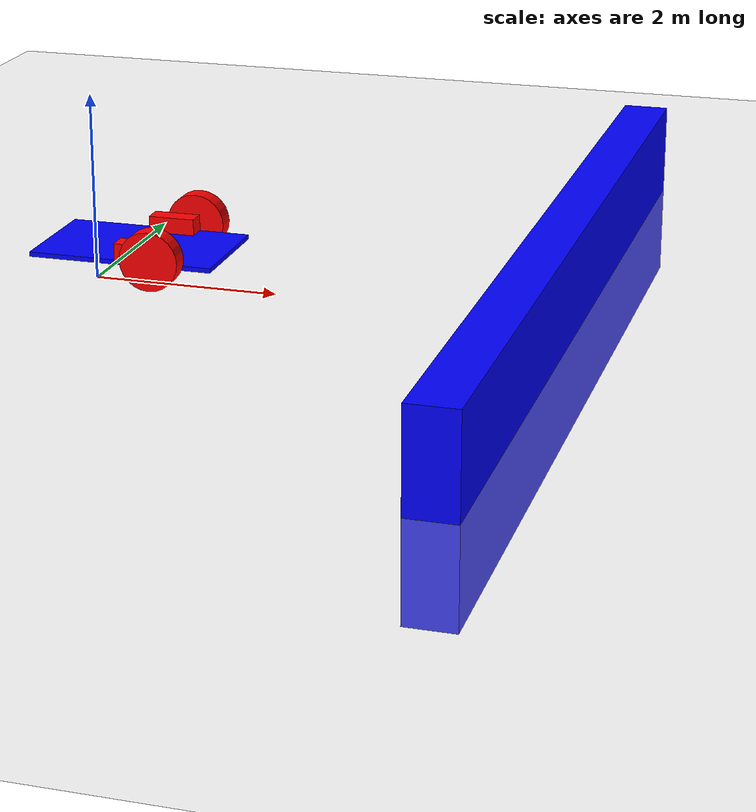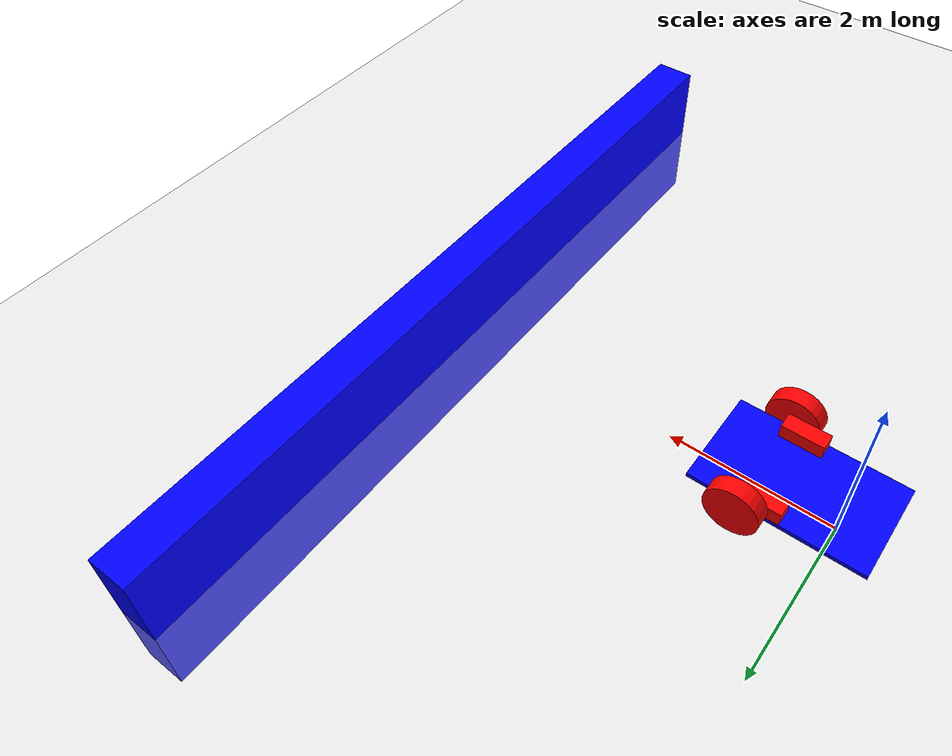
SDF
<sdf version='1.9'>
  <world name='sensor_world'>
    <physics name='1ms' type='ignored'>
      <max_step_size>0.001</max_step_size>
      <real_time_factor>1</real_time_factor>
      <real_time_update_rate>1000</real_time_update_rate>
    </physics>
    <plugin name='ignition::gazebo::systems::Physics' filename='ignition-gazebo-physics-system'/>
    <plugin name='ignition::gazebo::systems::UserCommands' filename='ignition-gazebo-user-commands-system'/>
    <plugin name='ignition::gazebo::systems::SceneBroadcaster' filename='ignition-gazebo-scene-broadcaster-system'/>
    <plugin name='ignition::gazebo::systems::Imu' filename='ignition-gazebo-imu-system'/>
    <plugin name='ignition::gazebo::systems::Sensors' filename='ignition-gazebo-sensors-system'>
      <render_engine>ogre2</render_engine>
    </plugin>
    <plugin name='ignition::gazebo::systems::Contact' filename='ignition-gazebo-contact-system'/>
    <gui fullscreen='false'>
      <plugin name='3D View' filename='MinimalScene'>
        <gz-gui>
          <title>3D View</title>
          <property type='bool' key='showTitleBar'>false</property>
          <property type='string' key='state'>docked</property>
        </gz-gui>
        <engine>ogre2</engine>
        <scene>scene</scene>
        <ambient_light>0.4 0.4 0.4</ambient_light>
        <background_color>0.8 0.8 0.8</background_color>
        <camera_pose>-6 0 6 0 0.5 0</camera_pose>
        <camera_clip>
          <near>0.25</near>
          <far>25000</far>
        </camera_clip>
      </plugin>
      <plugin name='Entity context menu' filename='EntityContextMenuPlugin'>
        <gz-gui>
          <property key='state' type='string'>floating</property>
          <property key='width' type='double'>5</property>
          <property key='height' type='double'>5</property>
          <property key='showTitleBar' type='bool'>false</property>
        </gz-gui>
      </plugin>
      <plugin name='Scene Manager' filename='GzSceneManager'>
        <gz-gui>
          <property key='resizable' type='bool'>false</property>
          <property key='width' type='double'>5</property>
          <property key='height' type='double'>5</property>
          <property key='state' type='string'>floating</property>
          <property key='showTitleBar' type='bool'>false</property>
        </gz-gui>
      </plugin>
      <plugin name='Interactive view control' filename='InteractiveViewControl'>
        <gz-gui>
          <property key='resizable' type='bool'>false</property>
          <property key='width' type='double'>5</property>
          <property key='height' type='double'>5</property>
          <property key='state' type='string'>floating</property>
          <property key='showTitleBar' type='bool'>false</property>
        </gz-gui>
      </plugin>
      <plugin name='Camera Tracking' filename='CameraTracking'>
        <gz-gui>
          <property key='resizable' type='bool'>false</property>
          <property key='width' type='double'>5</property>
          <property key='height' type='double'>5</property>
          <property key='state' type='string'>floating</property>
          <property key='showTitleBar' type='bool'>false</property>
        </gz-gui>
      </plugin>
      <plugin name='Marker manager' filename='MarkerManager'>
        <gz-gui>
          <property key='resizable' type='bool'>false</property>
          <property key='width' type='double'>5</property>
          <property key='height' type='double'>5</property>
          <property key='state' type='string'>floating</property>
          <property key='showTitleBar' type='bool'>false</property>
        </gz-gui>
      </plugin>
      <plugin name='Select Entities' filename='SelectEntities'>
        <gz-gui>
          <anchors target='Select entities'>
            <line own='right' target='right'/>
            <line own='top' target='top'/>
          </anchors>
          <property key='resizable' type='bool'>false</property>
          <property key='width' type='double'>5</property>
          <property key='height' type='double'>5</property>
          <property key='state' type='string'>floating</property>
          <property key='showTitleBar' type='bool'>false</property>
        </gz-gui>
      </plugin>
      <plugin name='Visualization Capabilities' filename='VisualizationCapabilities'>
        <gz-gui>
          <property key='resizable' type='bool'>false</property>
          <property key='width' type='double'>5</property>
          <property key='height' type='double'>5</property>
          <property key='state' type='string'>floating</property>
          <property key='showTitleBar' type='bool'>false</property>
        </gz-gui>
      </plugin>
      <plugin name='Spawn Entities' filename='Spawn'>
        <gz-gui>
          <anchors target='Select entities'>
            <line own='right' target='right'/>
            <line own='top' target='top'/>
          </anchors>
          <property key='resizable' type='bool'>false</property>
          <property key='width' type='double'>5</property>
          <property key='height' type='double'>5</property>
          <property key='state' type='string'>floating</property>
          <property key='showTitleBar' type='bool'>false</property>
        </gz-gui>
      </plugin>
      <plugin name='World control' filename='WorldControl'>
        <gz-gui>
          <title>World control</title>
          <property type='bool' key='showTitleBar'>false</property>
          <property type='bool' key='resizable'>false</property>
          <property type='double' key='height'>72</property>
          <property type='double' key='width'>121</property>
          <property type='double' key='z'>1</property>
          <property type='string' key='state'>floating</property>
          <anchors target='3D View'>
            <line own='left' target='left'/>
            <line own='bottom' target='bottom'/>
          </anchors>
        </gz-gui>
        <play_pause>true</play_pause>
        <step>true</step>
        <start_paused>true</start_paused>
        <use_event>true</use_event>
      </plugin>
      <plugin name='World stats' filename='WorldStats'>
        <gz-gui>
          <title>World stats</title>
          <property type='bool' key='showTitleBar'>false</property>
          <property type='bool' key='resizable'>false</property>
          <property type='double' key='height'>110</property>
          <property type='double' key='width'>290</property>
          <property type='double' key='z'>1</property>
          <property type='string' key='state'>floating</property>
          <anchors target='3D View'>
            <line own='right' target='right'/>
            <line own='bottom' target='bottom'/>
          </anchors>
        </gz-gui>
        <sim_time>true</sim_time>
        <real_time>true</real_time>
        <real_time_factor>true</real_time_factor>
        <iterations>true</iterations>
      </plugin>
      <plugin name='Shapes' filename='Shapes'>
        <gz-gui>
          <property key='resizable' type='bool'>false</property>
          <property key='x' type='double'>0</property>
          <property key='y' type='double'>0</property>
          <property key='width' type='double'>250</property>
          <property key='height' type='double'>50</property>
          <property key='state' type='string'>floating</property>
          <property key='showTitleBar' type='bool'>false</property>
          <property key='cardBackground' type='string'>#666666</property>
        </gz-gui>
      </plugin>
      <plugin name='Lights' filename='Lights'>
        <gz-gui>
          <property key='resizable' type='bool'>false</property>
          <property key='x' type='double'>250</property>
          <property key='y' type='double'>0</property>
          <property key='width' type='double'>150</property>
          <property key='height' type='double'>50</property>
          <property key='state' type='string'>floating</property>
          <property key='showTitleBar' type='bool'>false</property>
          <property key='cardBackground' type='string'>#666666</property>
        </gz-gui>
      </plugin>
      <plugin name='Transform control' filename='TransformControl'>
        <gz-gui>
          <property key='resizable' type='bool'>false</property>
          <property key='x' type='double'>0</property>
          <property key='y' type='double'>50</property>
          <property key='width' type='double'>250</property>
          <property key='height' type='double'>50</property>
          <property key='state' type='string'>floating</property>
          <property key='showTitleBar' type='bool'>false</property>
          <property key='cardBackground' type='string'>#777777</property>
        </gz-gui>
      </plugin>
      <plugin name='Screenshot' filename='Screenshot'>
        <gz-gui>
          <property key='resizable' type='bool'>false</property>
          <property key='x' type='double'>250</property>
          <property key='y' type='double'>50</property>
          <property key='width' type='double'>50</property>
          <property key='height' type='double'>50</property>
          <property key='state' type='string'>floating</property>
          <property key='showTitleBar' type='bool'>false</property>
          <property key='cardBackground' type='string'>#777777</property>
        </gz-gui>
      </plugin>
      <plugin name='VideoRecorder' filename='VideoRecorder'>
        <gz-gui>
          <property key='resizable' type='bool'>false</property>
          <property key='x' type='double'>300</property>
          <property key='y' type='double'>50</property>
          <property key='width' type='double'>50</property>
          <property key='height' type='double'>50</property>
          <property key='state' type='string'>floating</property>
          <property key='showTitleBar' type='bool'>false</property>
          <property key='cardBackground' type='string'>#777777</property>
        </gz-gui>
        <record_video>
          <use_sim_time>true</use_sim_time>
          <lockstep>false</lockstep>
          <bitrate>4000000</bitrate>
        </record_video>
      </plugin>
      <plugin name='Component inspector' filename='ComponentInspector'>
        <gz-gui>
          <property type='string' key='state'>docked_collapsed</property>
        </gz-gui>
      </plugin>
      <plugin name='Entity tree' filename='EntityTree'>
        <gz-gui>
          <property type='string' key='state'>docked_collapsed</property>
        </gz-gui>
      </plugin>
      <plugin name='View angle' filename='ViewAngle'>
        <gz-gui>
          <property type='string' key='state'>docked_collapsed</property>
        </gz-gui>
      </plugin>
      <plugin name='Key Publisher' filename='KeyPublisher'/>
    </gui>
    <plugin name='ignition::gazebo::systems::TriggeredPublisher' filename='libignition-gazebo-triggered-publisher-system.so'>
      <input type='ignition.msgs.Int32' topic='/keyboard/keypress'>
        <match field='data'>87</match>
      </input>
      <output type='ignition.msgs.Twist' topic='/cmd_vel'>linear: {x: 1.0}, angular: {z: 0.00}</output>
    </plugin>
    <plugin name='ignition::gazebo::systems::TriggeredPublisher' filename='libignition-gazebo-triggered-publisher-system.so'>
      <input type='ignition.msgs.Int32' topic='/keyboard/keypress'>
        <match field='data'>68</match>
      </input>
      <output type='ignition.msgs.Twist' topic='/cmd_vel'>linear: {x: 0.0}, angular: {z: -1.0}</output>
    </plugin>
    <plugin name='ignition::gazebo::systems::TriggeredPublisher' filename='libignition-gazebo-triggered-publisher-system.so'>
      <input type='ignition.msgs.Int32' topic='/keyboard/keypress'>
        <match field='data'>83</match>
      </input>
      <output type='ignition.msgs.Twist' topic='/cmd_vel'>linear: {x: -1.0}, angular: {z: 0.0}</output>
    </plugin>
    <plugin name='ignition::gazebo::systems::TriggeredPublisher' filename='libignition-gazebo-triggered-publisher-system.so'>
      <input type='ignition.msgs.Int32' topic='/keyboard/keypress'>
        <match field='data'>65</match>
      </input>
      <output type='ignition.msgs.Twist' topic='/cmd_vel'>linear: {x: 0.0}, angular: {z: 0.1}</output>
    </plugin>
    <plugin name='ignition::gazebo::systems::Imu' filename='libignition-gazebo-imu-system.so'/>
    <gravity>0 0 -9.8</gravity>
    <magnetic_field>6e-06 2.3e-05 -4.2e-05</magnetic_field>
    <atmosphere type='adiabatic'/>
    <scene>
      <ambient>0.4 0.4 0.4 1</ambient>
      <background>0.7 0.7 0.7 1</background>
      <shadows>true</shadows>
    </scene>
    <model name='ground_plane'>
      <static>true</static>
      <link name='link'>
        <collision name='collision'>
          <geometry>
            <plane>
              <normal>0 0 1</normal>
              <size>1 1</size>
            </plane>
          </geometry>
          <surface>
            <friction>
              <ode/>
            </friction>
            <bounce/>
            <contact/>
          </surface>
        </collision>
        <visual name='visual'>
          <geometry>
            <plane>
              <normal>0 0 1</normal>
              <size>100 100</size>
            </plane>
          </geometry>
          <material>
            <ambient>0.8 0.8 0.8 1</ambient>
            <diffuse>0.8 0.8 0.8 1</diffuse>
            <specular>0.8 0.8 0.8 1</specular>
          </material>
        </visual>
        <pose>0 0 0 0 -0 0</pose>
        <inertial>
          <pose>0 0 0 0 -0 0</pose>
          <mass>1</mass>
          <inertia>
            <ixx>1</ixx>
            <ixy>0</ixy>
            <ixz>0</ixz>
            <iyy>1</iyy>
            <iyz>0</iyz>
            <izz>1</izz>
          </inertia>
        </inertial>
        <enable_wind>false</enable_wind>
      </link>
      <pose>0 0 0 0 -0 0</pose>
      <self_collide>false</self_collide>
    </model>
    <model name='wall'>
      <static>true</static>
      <pose>5 0 0 0 -0 0</pose>
      <link name='box'>
        <visual name='visual'>
          <geometry>
            <box>
              <size>0.5 10 2</size>
            </box>
          </geometry>
          <material>
            <ambient>0 0 1 1</ambient>
            <diffuse>0 0 1 1</diffuse>
            <specular>0 0 1 1</specular>
          </material>
        </visual>
        <collision name='collision'>
          <geometry>
            <box>
              <size>0.5 10 2</size>
            </box>
          </geometry>
          <surface>
            <friction>
              <ode/>
            </friction>
            <bounce/>
            <contact/>
          </surface>
        </collision>
        <sensor name='sensor_contact' type='contact'>
          <contact>
            <collision>collision</collision>
            <topic>__default_topic__</topic>
          </contact>
          <pose>0 0 0 0 -0 0</pose>
        </sensor>
        <pose>0 0 0 0 -0 0</pose>
        <inertial>
          <pose>0 0 0 0 -0 0</pose>
          <mass>1</mass>
          <inertia>
            <ixx>1</ixx>
            <ixy>0</ixy>
            <ixz>0</ixz>
            <iyy>1</iyy>
            <iyz>0</iyz>
            <izz>1</izz>
          </inertia>
        </inertial>
        <enable_wind>false</enable_wind>
      </link>
      <plugin name='ignition::gazebo::systems::TouchPlugin' filename='libignition-gazebo-touchplugin-system.so'>
        <target>vehicle_blue</target>
        <namespace>wall</namespace>
        <time>0.001</time>
        <enabled>true</enabled>
      </plugin>
      <self_collide>false</self_collide>
    </model>
    <model name='vehicle_blue' canonical_link='chassis'>
      <pose>0 0 0 0 -0 0</pose>
      <plugin name='ignition::gazebo::systems::DiffDrive' filename='libignition-gazebo-diff-drive-system.so'>
        <left_joint>left_wheel_joint</left_joint>
        <right_joint>right_wheel_joint</right_joint>
        <wheel_separation>1.2</wheel_separation>
        <wheel_radius>0.4</wheel_radius>
        <odom_publish_frequency>1</odom_publish_frequency>
        <topic>cmd_vel</topic>
      </plugin>
      <link name='chassis'>
        <pose>0.5 0 0.4 0 -0 0</pose>
        <inertial>
          <mass>1.14395</mass>
          <inertia>
            <ixx>0.095328999999999997</ixx>
            <ixy>0</ixy>
            <ixz>0</ixz>
            <iyy>0.38131700000000002</iyy>
            <iyz>0</iyz>
            <izz>0.47664600000000001</izz>
          </inertia>
          <pose>0 0 0 0 -0 0</pose>
        </inertial>
        <visual name='visual'>
          <geometry>
            <box>
              <size>2 1.2 0.05</size>
            </box>
          </geometry>
          <material>
            <ambient>0 0 1 1</ambient>
            <diffuse>0 0 1 1</diffuse>
            <specular>0 0 1 1</specular>
          </material>
        </visual>
        <collision name='collision'>
          <geometry>
            <box>
              <size>2 1.2 0.05</size>
            </box>
          </geometry>
          <surface>
            <friction>
              <ode/>
            </friction>
            <bounce/>
            <contact/>
          </surface>
        </collision>
        <sensor name='imu_sensor' type='imu'>
          <pose>0 0 0 0 -0 0</pose>
          <topic>imu</topic>
          <update_rate>1</update_rate>
          <enable_metrics>false</enable_metrics>
          <imu>
            <orientation_reference_frame>
              <localization>CUSTOM</localization>
              <custom_rpy>0 0 0</custom_rpy>
              <grav_dir_x>1 0 0</grav_dir_x>
            </orientation_reference_frame>
            <angular_velocity>
              <x>
                <noise type='none'>
                  <mean>0</mean>
                  <stddev>0</stddev>
                  <bias_mean>0</bias_mean>
                  <bias_stddev>0</bias_stddev>
                  <dynamic_bias_stddev>0</dynamic_bias_stddev>
                  <dynamic_bias_correlation_time>0</dynamic_bias_correlation_time>
                  <precision>0</precision>
                </noise>
              </x>
              <y>
                <noise type='none'>
                  <mean>0</mean>
                  <stddev>0</stddev>
                  <bias_mean>0</bias_mean>
                  <bias_stddev>0</bias_stddev>
                  <dynamic_bias_stddev>0</dynamic_bias_stddev>
                  <dynamic_bias_correlation_time>0</dynamic_bias_correlation_time>
                  <precision>0</precision>
                </noise>
              </y>
              <z>
                <noise type='none'>
                  <mean>0</mean>
                  <stddev>0</stddev>
                  <bias_mean>0</bias_mean>
                  <bias_stddev>0</bias_stddev>
                  <dynamic_bias_stddev>0</dynamic_bias_stddev>
                  <dynamic_bias_correlation_time>0</dynamic_bias_correlation_time>
                  <precision>0</precision>
                </noise>
              </z>
            </angular_velocity>
            <linear_acceleration>
              <x>
                <noise type='none'>
                  <mean>0</mean>
                  <stddev>0</stddev>
                  <bias_mean>0</bias_mean>
                  <bias_stddev>0</bias_stddev>
                  <dynamic_bias_stddev>0</dynamic_bias_stddev>
                  <dynamic_bias_correlation_time>0</dynamic_bias_correlation_time>
                  <precision>0</precision>
                </noise>
              </x>
              <y>
                <noise type='none'>
                  <mean>0</mean>
                  <stddev>0</stddev>
                  <bias_mean>0</bias_mean>
                  <bias_stddev>0</bias_stddev>
                  <dynamic_bias_stddev>0</dynamic_bias_stddev>
                  <dynamic_bias_correlation_time>0</dynamic_bias_correlation_time>
                  <precision>0</precision>
                </noise>
              </y>
              <z>
                <noise type='none'>
                  <mean>0</mean>
                  <stddev>0</stddev>
                  <bias_mean>0</bias_mean>
                  <bias_stddev>0</bias_stddev>
                  <dynamic_bias_stddev>0</dynamic_bias_stddev>
                  <dynamic_bias_correlation_time>0</dynamic_bias_correlation_time>
                  <precision>0</precision>
                </noise>
              </z>
            </linear_acceleration>
            <enable_orientation>true</enable_orientation>
          </imu>
        </sensor>
        <sensor name='gpu_lidar' type='gpu_lidar'>
          <pose>0.8 0 0.5 0 -0 0</pose>
          <topic>lidar</topic>
          <update_rate>10</update_rate>
          <enable_metrics>false</enable_metrics>
          <lidar>
            <scan>
              <horizontal>
                <samples>640</samples>
                <resolution>1</resolution>
                <min_angle>-1.3962600000000001</min_angle>
                <max_angle>1.3962600000000001</max_angle>
              </horizontal>
              <vertical>
                <samples>1</samples>
                <min_angle>0</min_angle>
                <max_angle>0</max_angle>
                <resolution>0.01</resolution>
              </vertical>
            </scan>
            <range>
              <min>0.080000000000000002</min>
              <max>10</max>
              <resolution>0.01</resolution>
            </range>
            <noise>
              <type>none</type>
              <mean>0</mean>
              <stddev>0</stddev>
            </noise>
            <visibility_mask>4294967295</visibility_mask>
          </lidar>
        </sensor>
        <enable_wind>false</enable_wind>
      </link>
      <link name='left_motor'>
        <pose>0.7 0.5 0.5 0 -0 0</pose>
        <inertial>
          <mass>0.5</mass>
          <inertia>
            <ixx>0.095328999999999997</ixx>
            <ixy>0</ixy>
            <ixz>0</ixz>
            <iyy>0.38131700000000002</iyy>
            <iyz>0</iyz>
            <izz>0.47664600000000001</izz>
          </inertia>
          <pose>0 0 0 0 -0 0</pose>
        </inertial>
        <visual name='visual'>
          <geometry>
            <box>
              <size>0.5 0.2 0.2</size>
            </box>
          </geometry>
          <material>
            <ambient>1 0 0 1</ambient>
            <diffuse>1 0 0 1</diffuse>
            <specular>1 0 0 1</specular>
          </material>
        </visual>
        <collision name='collision'>
          <geometry>
            <box>
              <size>0.5 0.2 0.2</size>
            </box>
          </geometry>
          <surface>
            <friction>
              <ode/>
            </friction>
            <bounce/>
            <contact/>
          </surface>
        </collision>
        <enable_wind>false</enable_wind>
      </link>
      <link name='right_motor'>
        <pose>0.7 -0.5 0.5 0 -0 0</pose>
        <inertial>
          <mass>0.5</mass>
          <inertia>
            <ixx>0.095328999999999997</ixx>
            <ixy>0</ixy>
            <ixz>0</ixz>
            <iyy>0.38131700000000002</iyy>
            <iyz>0</iyz>
            <izz>0.47664600000000001</izz>
          </inertia>
          <pose>0 0 0 0 -0 0</pose>
        </inertial>
        <visual name='visual'>
          <geometry>
            <box>
              <size>0.5 0.2 0.2</size>
            </box>
          </geometry>
          <material>
            <ambient>1 0 0 1</ambient>
            <diffuse>1 0 0 1</diffuse>
            <specular>1 0 0 1</specular>
          </material>
        </visual>
        <collision name='collision'>
          <geometry>
            <box>
              <size>0.5 0.2 0.2</size>
            </box>
          </geometry>
          <surface>
            <friction>
              <ode/>
            </friction>
            <bounce/>
            <contact/>
          </surface>
        </collision>
        <enable_wind>false</enable_wind>
      </link>
      <link name='left_wheel'>
        <pose>0.9 0.7 0.5 -1.5707 0 0</pose>
        <inertial>
          <mass>1</mass>
          <inertia>
            <ixx>0.043333000000000003</ixx>
            <ixy>0</ixy>
            <ixz>0</ixz>
            <iyy>0.043333000000000003</iyy>
            <iyz>0</iyz>
            <izz>0.080000000000000002</izz>
          </inertia>
          <pose>0 0 0 0 -0 0</pose>
        </inertial>
        <visual name='visual'>
          <geometry>
            <cylinder>
              <radius>0.315</radius>
              <length>0.20000000000000001</length>
            </cylinder>
          </geometry>
          <material>
            <ambient>1 0 0 1</ambient>
            <diffuse>1 0 0 1</diffuse>
            <specular>1 0 0 1</specular>
          </material>
        </visual>
        <collision name='collision'>
          <geometry>
            <cylinder>
              <radius>0.315</radius>
              <length>0.20000000000000001</length>
            </cylinder>
          </geometry>
          <surface>
            <friction>
              <ode/>
            </friction>
            <bounce/>
            <contact/>
          </surface>
        </collision>
        <enable_wind>false</enable_wind>
      </link>
      <link name='right_wheel'>
        <pose>0.9 -0.7 0.5 -1.5707 0 0</pose>
        <inertial>
          <mass>1</mass>
          <inertia>
            <ixx>0.043333000000000003</ixx>
            <ixy>0</ixy>
            <ixz>0</ixz>
            <iyy>0.043333000000000003</iyy>
            <iyz>0</iyz>
            <izz>0.080000000000000002</izz>
          </inertia>
          <pose>0 0 0 0 -0 0</pose>
        </inertial>
        <visual name='visual'>
          <geometry>
            <cylinder>
              <radius>0.315</radius>
              <length>0.20000000000000001</length>
            </cylinder>
          </geometry>
          <material>
            <ambient>1 0 0 1</ambient>
            <diffuse>1 0 0 1</diffuse>
            <specular>1 0 0 1</specular>
          </material>
        </visual>
        <collision name='collision'>
          <geometry>
            <cylinder>
              <radius>0.315</radius>
              <length>0.20000000000000001</length>
            </cylinder>
          </geometry>
          <surface>
            <friction>
              <ode/>
            </friction>
            <bounce/>
            <contact/>
          </surface>
        </collision>
        <enable_wind>false</enable_wind>
      </link>
      <frame name='caster_frame' attached_to='chassis'>
        <pose>-0.4 0 -0.1075 0 0 0</pose>
      </frame>
      <link name='caster'>
        <pose>0.1 0 0.2925 0 -0 0</pose>
        <inertial>
          <mass>1</mass>
          <inertia>
            <ixx>0.016</ixx>
            <ixy>0</ixy>
            <ixz>0</ixz>
            <iyy>0.016</iyy>
            <iyz>0</iyz>
            <izz>0.016</izz>
          </inertia>
          <pose>0 0 0 0 -0 0</pose>
        </inertial>
        <visual name='visual'>
          <geometry>
            <sphere>
              <radius>0.1075</radius>
            </sphere>
          </geometry>
          <material>
            <ambient>0 1 0 1</ambient>
            <diffuse>0 1 0 1</diffuse>
            <specular>0 1 0 1</specular>
          </material>
        </visual>
        <collision name='collision'>
          <geometry>
            <sphere>
              <radius>0.1075</radius>
            </sphere>
          </geometry>
          <surface>
            <friction>
              <ode/>
            </friction>
            <bounce/>
            <contact/>
          </surface>
        </collision>
        <enable_wind>false</enable_wind>
      </link>
      <frame name='lidar_frame' attached_to='chassis'>
        <pose>0.8 0 0.5 0 0 0</pose>
      </frame>
      <joint name='left_wheel_joint' type='revolute'>
        <pose>0 -0 0 0 -0 0</pose>
        <parent>left_motor</parent>
        <child>left_wheel</child>
        <axis>
          <xyz>0 9.6e-05 1</xyz>
          <limit>
            <lower>-1.7976900000000001e+308</lower>
            <upper>1.7976900000000001e+308</upper>
            <effort>inf</effort>
            <velocity>inf</velocity>
            <stiffness>100000000</stiffness>
            <dissipation>1</dissipation>
          </limit>
          <dynamics>
            <spring_reference>0</spring_reference>
            <spring_stiffness>0</spring_stiffness>
            <damping>0</damping>
            <friction>0</friction>
          </dynamics>
        </axis>
      </joint>
      <joint name='right_wheel_joint' type='revolute'>
        <pose>0 0 0 0 -0 0</pose>
        <parent>right_motor</parent>
        <child>right_wheel</child>
        <axis>
          <xyz>0 9.6e-05 1</xyz>
          <limit>
            <lower>-1.7976900000000001e+308</lower>
            <upper>1.7976900000000001e+308</upper>
            <effort>inf</effort>
            <velocity>inf</velocity>
            <stiffness>100000000</stiffness>
            <dissipation>1</dissipation>
          </limit>
          <dynamics>
            <spring_reference>0</spring_reference>
            <spring_stiffness>0</spring_stiffness>
            <damping>0</damping>
            <friction>0</friction>
          </dynamics>
        </axis>
      </joint>
      <joint name='right_motor_joint' type='revolute'>
        <pose>0 0 0 0 -0 0</pose>
        <parent>chassis</parent>
        <child>right_motor</child>
        <axis>
          <xyz>0 1 0</xyz>
          <limit>
            <lower>0</lower>
            <upper>0</upper>
            <effort>inf</effort>
            <velocity>inf</velocity>
            <stiffness>100000000</stiffness>
            <dissipation>1</dissipation>
          </limit>
          <dynamics>
            <spring_reference>0</spring_reference>
            <spring_stiffness>0</spring_stiffness>
            <damping>0</damping>
            <friction>0</friction>
          </dynamics>
        </axis>
      </joint>
      <joint name='left_motor_joint' type='revolute'>
        <pose>0 0 0 0 -0 0</pose>
        <parent>chassis</parent>
        <child>left_motor</child>
        <axis>
          <xyz>0 1 0</xyz>
          <limit>
            <lower>0</lower>
            <upper>0</upper>
            <effort>inf</effort>
            <velocity>inf</velocity>
            <stiffness>100000000</stiffness>
            <dissipation>1</dissipation>
          </limit>
          <dynamics>
            <spring_reference>0</spring_reference>
            <spring_stiffness>0</spring_stiffness>
            <damping>0</damping>
            <friction>0</friction>
          </dynamics>
        </axis>
      </joint>
      <joint name='caster_wheel' type='ball'>
        <parent>chassis</parent>
        <child>caster</child>
        <pose>0 0 0 0 -0 0</pose>
      </joint>
      <static>false</static>
      <self_collide>false</self_collide>
    </model>
    <light name='sun' type='directional'>
      <pose>0 0 10 0 -0 0</pose>
      <cast_shadows>true</cast_shadows>
      <intensity>1</intensity>
      <direction>-0.5 0.1 -0.9</direction>
      <diffuse>0.8 0.8 0.8 1</diffuse>
      <specular>0.2 0.2 0.2 1</specular>
      <attenuation>
        <range>1000</range>
        <linear>0.01</linear>
        <constant>0.90000000000000002</constant>
        <quadratic>0.001</quadratic>
      </attenuation>
      <spot>
        <inner_angle>0</inner_angle>
        <outer_angle>0</outer_angle>
        <falloff>0</falloff>
      </spot>
    </light>
  </world>
</sdf>
